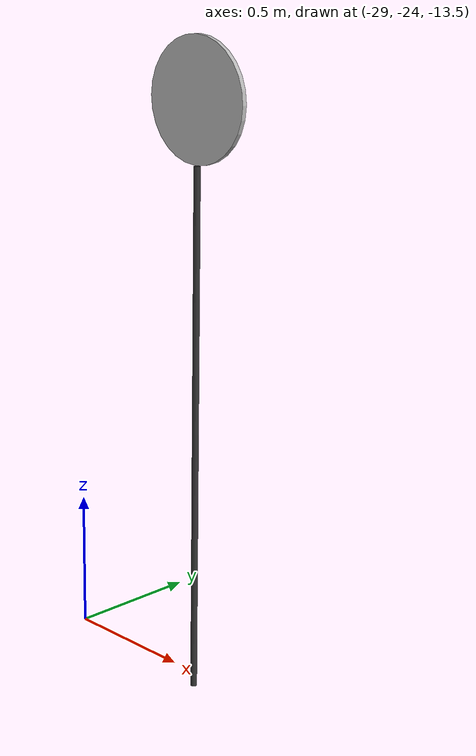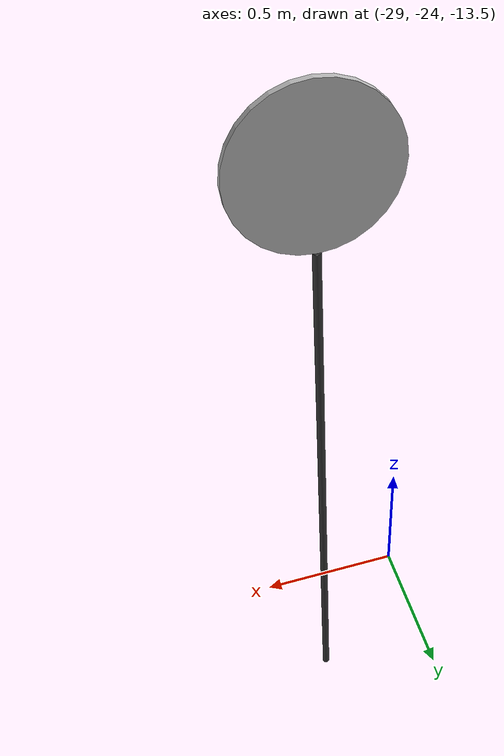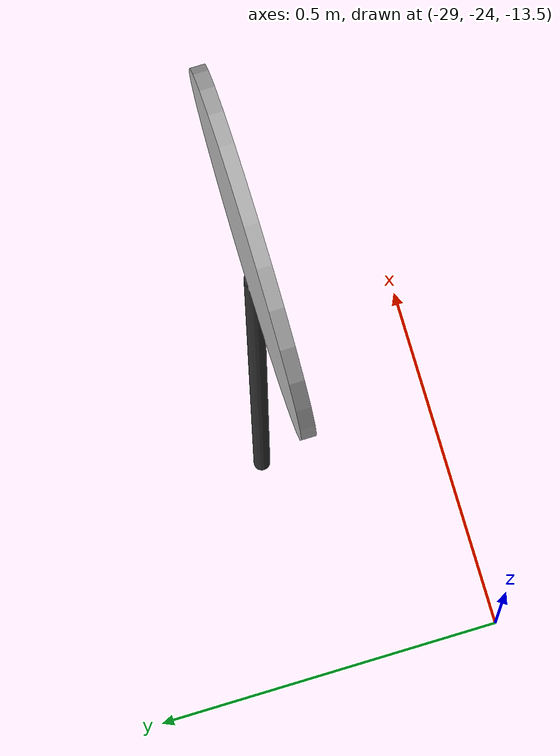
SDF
<sdf version="1.10">
 <world name="ackermann_steering">
  <model name="tabela_1">
   <link name="link">
    <visual name="visual">
     <geometry>
      <mesh><uri>file:///home/ser/robotaksi-gazebo-master/models/işaretler/girilmez/meshes/tabela.dae</uri></mesh>
     </geometry>
    </visual>
    <collision name="collision">
     <geometry>
      <mesh><uri>file:///home/ser/robotaksi-gazebo-master/models/işaretler/girilmez/meshes/tabela.dae</uri></mesh>
     </geometry>
    </collision>
    <inertial>
     <mass>1</mass>
     <inertia><ixx>1</ixx><ixy>0</ixy><ixz>0</ixz><iyy>1</iyy><iyz>0</iyz><izz>1</izz></inertia>
    </inertial>
   </link>
   <pose>-28.654899597167969 -23.752799987792969 -13.737013816833496 0 0 0</pose>
   <static>false</static>
  </model>
 </world>
</sdf>
